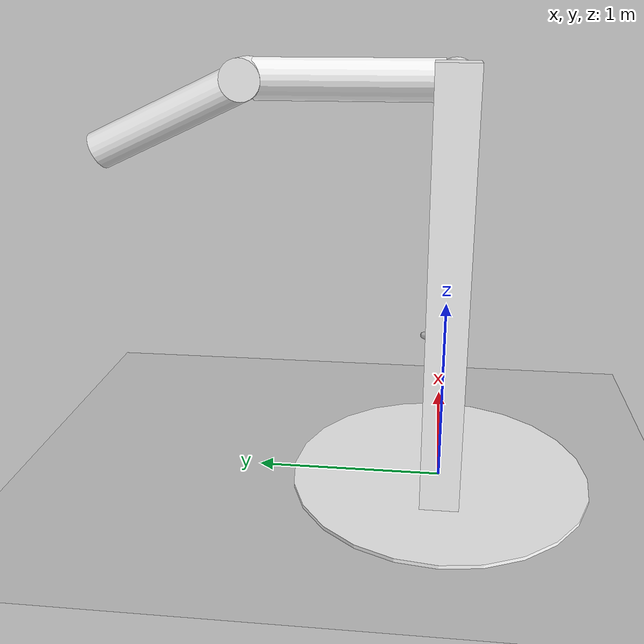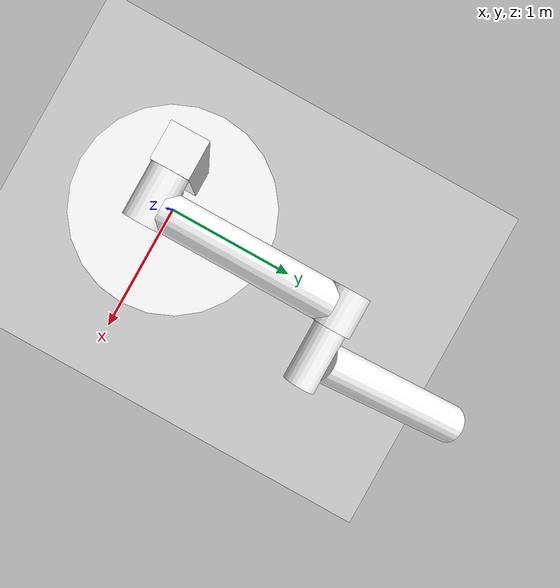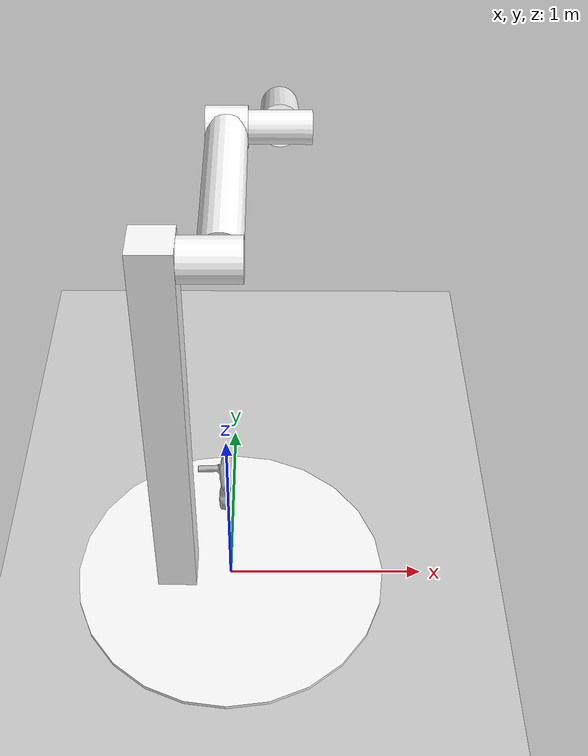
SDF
<?xml version="1.0" ?>
<sdf version="1.5">
  <world name="default">
    <include>
      <uri>model://ground_plane</uri>
    </include>
    <include>
      <uri>model://sun</uri>
    </include>

    <include>
      <uri>model://double_pendulum_with_base</uri>
    </include>

    <model name="model_stl_dae">
      <pose>0 0 0.5 0 0 0</pose>
      <link name="link">
        <collision name="collision">
          <geometry>
            <mesh>
              <uri>model://cordless_drill/meshes/cordless_drill.stl</uri>
            </mesh>
          </geometry>
        </collision>
        <visual name="visual">
          <geometry>
            <mesh>
              <uri>model://cordless_drill/meshes/cordless_drill.dae</uri>
            </mesh>
          </geometry>
        </visual>
      </link>
    </model>

  </world>
</sdf>

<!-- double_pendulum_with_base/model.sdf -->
<sdf version="1.5">
  <model name="double_pendulum_with_base">
    <link name="base">
      <inertial>
        <mass>100</mass>
      </inertial>
      <visual name="vis_plate_on_ground">
        <pose>0 0 0.01 0 0 0</pose>
        <geometry>
          <cylinder>
            <radius>0.8</radius>
            <length>0.02</length>
          </cylinder>
        </geometry>
        <material><diffuse>1 1 1 1</diffuse><specular>0.1 0.1 0.1 1</specular></material>
      </visual>
      <visual name="vis_pole">
        <pose>-0.275 0 1.1 0 0 0</pose>
        <geometry>
          <box>
            <size>0.2 0.2 2.2</size>
          </box>
        </geometry>
        <material><diffuse>1 1 1 1</diffuse><specular>0.1 0.1 0.1 1</specular></material>
      </visual>
      <collision name="col_plate_on_ground">
        <pose>0 0 0.01 0 0 0</pose>
        <geometry>
          <cylinder>
            <radius>0.8</radius>
            <length>0.02</length>
          </cylinder>
        </geometry>
      </collision>
      <collision name="col_pole">
        <pose>-0.275 0 1.1 0 0 0</pose>
        <geometry>
          <box>
            <size>0.2 0.2 2.2</size>
          </box>
        </geometry>
      </collision>
    </link>
    <!-- upper link, length 1, IC -90 degrees -->
    <link name="upper_link">
      <pose>0 0 2.1 -1.5708 0 0</pose>
      <self_collide>0</self_collide>
      <inertial>
        <pose>0 0 0.5 0 0 0</pose>
      </inertial>
      <visual name="vis_upper_joint">
        <pose>-0.05 0 0 0 1.5708 0</pose>
        <geometry>
          <cylinder>
            <radius>0.1</radius>
            <length>0.3</length>
          </cylinder>
        </geometry>
        <material><diffuse>1 1 1 1</diffuse><specular>0.1 0.1 0.1 1</specular></material>
      </visual>
      <visual name="vis_lower_joint">
        <pose>0 0 1.0 0 1.5708 0</pose>
        <geometry>
          <cylinder>
            <radius>0.1</radius>
            <length>0.2</length>
          </cylinder>
        </geometry>
        <material><diffuse>1 1 1 1</diffuse><specular>0.1 0.1 0.1 1</specular></material>
      </visual>
      <visual name="vis_cylinder">
        <pose>0 0 0.5 0 0 0</pose>
        <geometry>
          <cylinder>
            <radius>0.1</radius>
            <length>0.9</length>
          </cylinder>
        </geometry>
        <material><diffuse>1 1 1 1</diffuse><specular>0.1 0.1 0.1 1</specular></material>
      </visual>
      <collision name="col_upper_joint">
        <pose>-0.05 0 0 0 1.5708 0</pose>
        <geometry>
          <cylinder>
            <radius>0.1</radius>
            <length>0.3</length>
          </cylinder>
        </geometry>
      </collision>
      <collision name="col_lower_joint">
        <pose>0 0 1.0 0 1.5708 0</pose>
        <geometry>
          <cylinder>
            <radius>0.1</radius>
            <length>0.2</length>
          </cylinder>
        </geometry>
      </collision>
      <collision name="col_cylinder">
        <pose>0 0 0.5 0 0 0</pose>
        <geometry>
          <cylinder>
            <radius>0.1</radius>
            <length>0.9</length>
          </cylinder>
        </geometry>
      </collision>
    </link>
    <!-- lower link, length 1, IC ~-120 degrees more -->
    <link name="lower_link">
      <pose>0.25 1.0 2.1 -2 0 0</pose>
      <self_collide>0</self_collide>
      <inertial>
        <pose>0 0 0.5 0 0 0</pose>
      </inertial>
      <visual name="vis_lower_joint">
        <pose>0 0 0 0 1.5708 0</pose>
        <geometry>
          <cylinder>
            <radius>0.08</radius>
            <length>0.3</length>
          </cylinder>
        </geometry>
        <material><diffuse>1 1 1 1</diffuse><specular>0.1 0.1 0.1 1</specular></material>
      </visual>
      <visual name="vis_cylinder">
        <pose>0 0 0.5 0 0 0</pose>
        <geometry>
          <cylinder>
            <radius>0.1</radius>
            <length>0.9</length>
          </cylinder>
        </geometry>
        <material><diffuse>1 1 1 1</diffuse><specular>0.1 0.1 0.1 1</specular></material>
      </visual>
      <collision name="col_lower_joint">
        <pose>0 0 0 0 1.5708 0</pose>
        <geometry>
          <cylinder>
            <radius>0.08</radius>
            <length>0.3</length>
          </cylinder>
        </geometry>
      </collision>
      <collision name="col_cylinder">
        <pose>0 0 0.5 0 0 0</pose>
        <geometry>
          <cylinder>
            <radius>0.1</radius>
            <length>0.9</length>
          </cylinder>
        </geometry>
      </collision>
    </link>
    <!-- pin joint for upper link, at origin of upper link -->
    <joint name="upper_joint" type="revolute">
      <parent>base</parent>
      <child>upper_link</child>
      <axis>
        <xyz>1.0 0 0</xyz>
      </axis>
    </joint>
    <!-- pin joint for lower link, at origin of child link -->
    <joint name="lower_joint" type="revolute">
      <parent>upper_link</parent>
      <child>lower_link</child>
      <axis>
        <xyz>1.0 0 0</xyz>
      </axis>
    </joint>
  </model>
</sdf>
